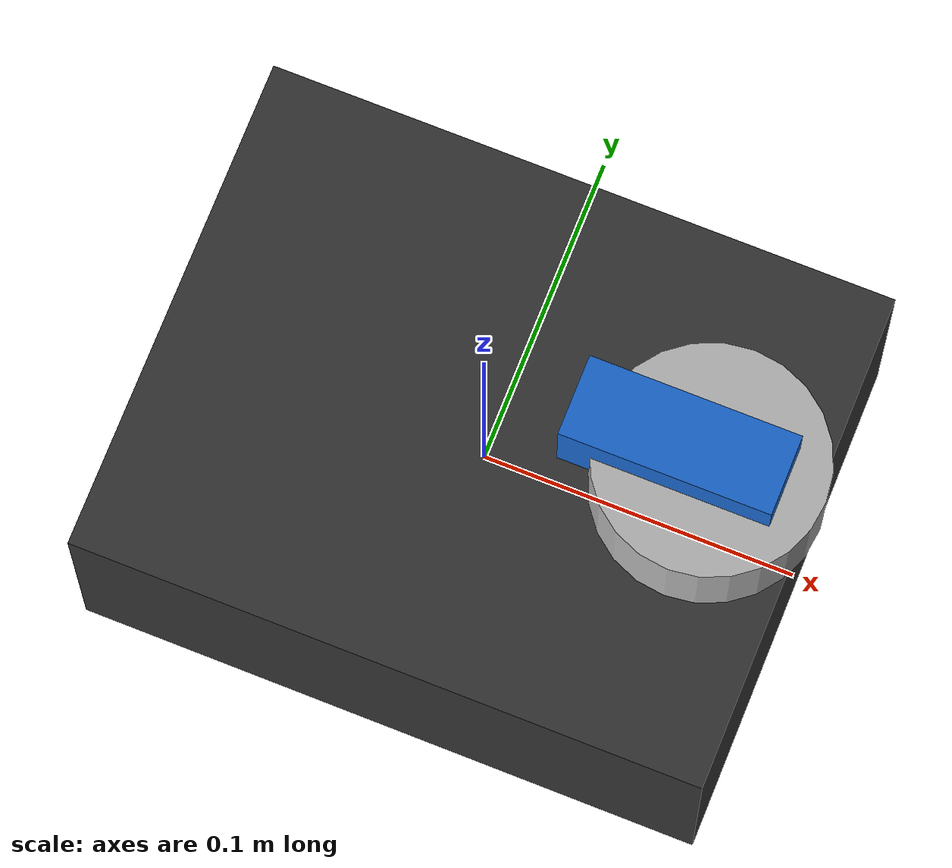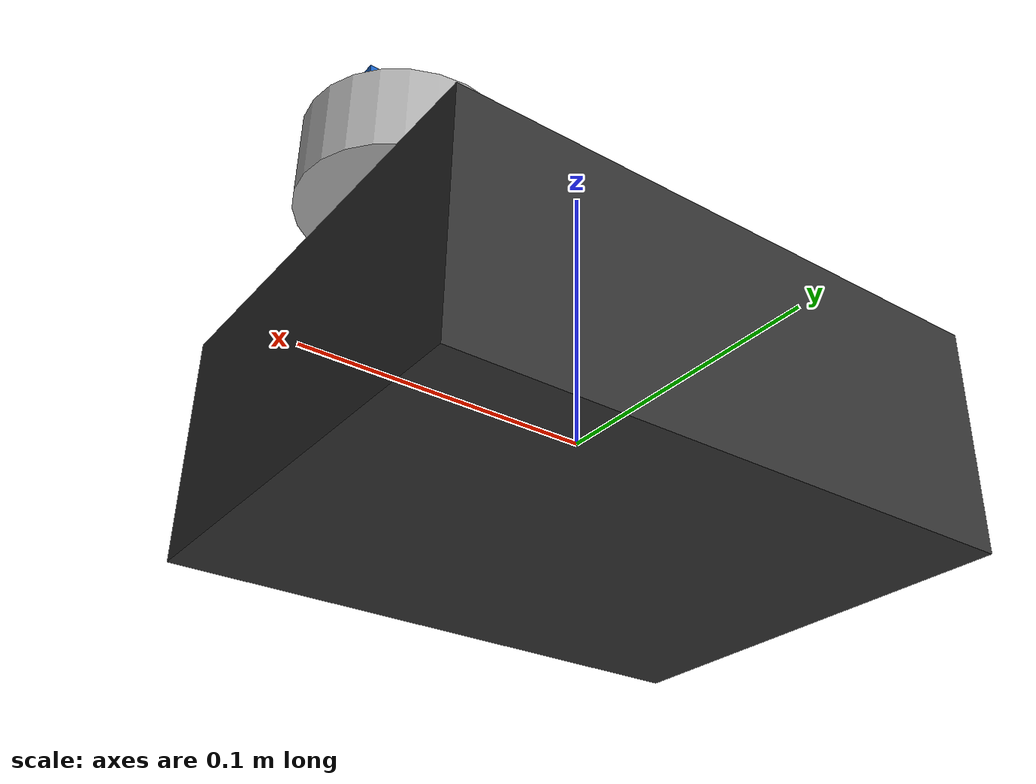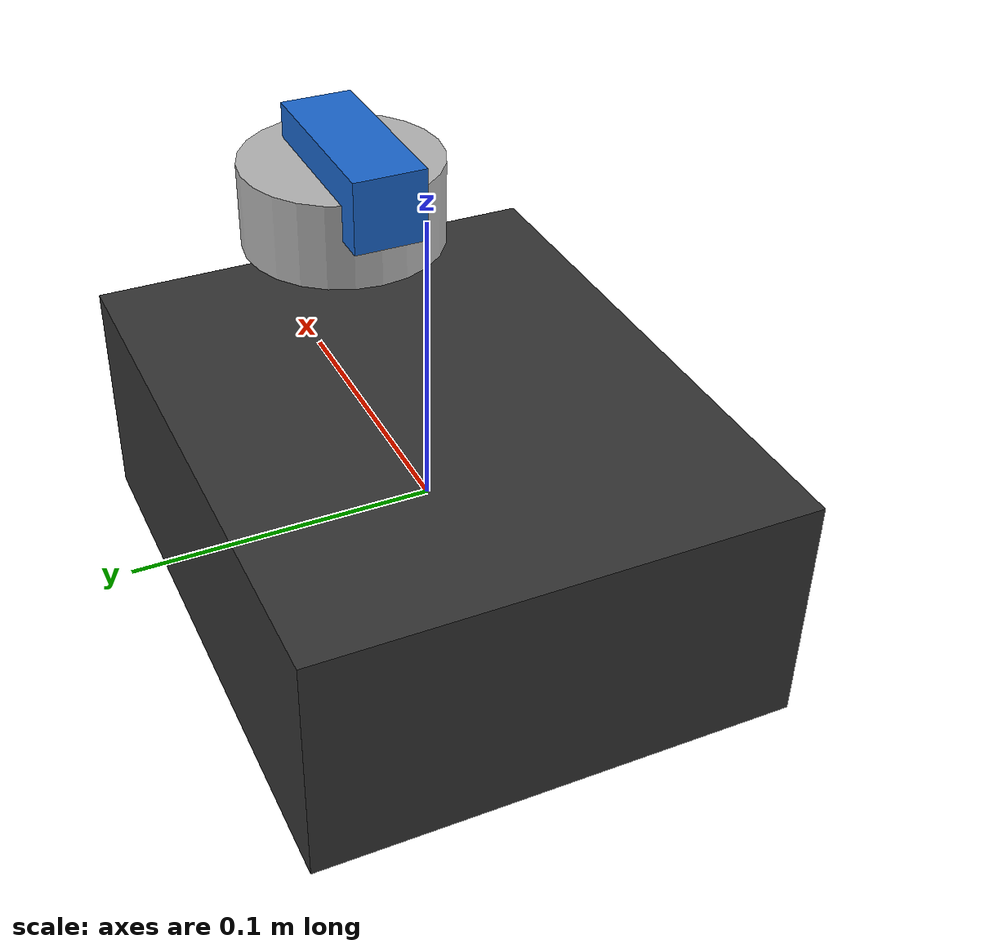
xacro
<?xml version="1.0"?>
<robot name="synapse_base" xmlns:xacro="http://www.ros.org/wiki/xacro">

  <!-- ======================== Properties ======================== -->
  <xacro:property name="pi" value="3.141592653589793"/>

  <!-- Base geometry (meters) and mass (kg) -->
  <xacro:property name="base_length" value="0.20"/>
  <xacro:property name="base_width"  value="0.16"/>
  <xacro:property name="base_height" value="0.08"/>
  <xacro:property name="base_mass"   value="2.0"/>

  <!-- Laser geometry -->
  <xacro:property name="laser_radius" value="0.035"/>
  <xacro:property name="laser_height" value="0.030"/>
  <xacro:property name="laser_mass"   value="0.20"/>

  <!-- Camera enclosure geometry -->
  <xacro:property name="cam_box_x" value="0.065"/>
  <xacro:property name="cam_box_y" value="0.025"/>
  <xacro:property name="cam_box_z" value="0.025"/>
  <xacro:property name="cam_mass"   value="0.12"/>

  <!-- Wheel geometry (cylindrical), axle along +Y, rotation axis (0 1 0) -->
  <xacro:property name="wheel_radius" value="0.033"/>
  <xacro:property name="wheel_thickness" value="0.020"/>
  <xacro:property name="wheel_mass" value="0.15"/>

  <!-- Wheel positions relative to base_link (meters) -->
  <!-- Front wheels slightly forward, rear wheels slightly backward -->
  <xacro:property name="wheel_x_forward" value="${ base_length/2.0 - 0.05 }"/>
  <xacro:property name="wheel_x_backward" value="${ -base_length/2.0 + 0.05 }"/>
  <!-- Lateral offset: near the outer edges, leave margin from chassis -->
  <xacro:property name="wheel_y_offset" value="${ base_width/2.0 - 0.02 }"/>
  <!-- Wheel ground contact (assuming ground z=0 at wheel bottom); mount at base bottom plus radius -->
  <xacro:property name="wheel_z" value="${ -base_height/2.0 + wheel_radius }"/>

  <!-- IMU geometry -->
  <xacro:property name="imu_box" value="0.02"/>
  <xacro:property name="imu_mass" value="0.05"/>

  <!-- Mount offsets relative to base_link (meters) -->
  <!-- Place laser at the front-top of the chassis -->
  <xacro:property name="laser_offset_x" value="${base_length/2.0 - 0.03}"/>
  <xacro:property name="laser_offset_y" value="0.0"/>
  <xacro:property name="laser_offset_z" value="${base_height/2.0 + laser_height/2.0 + 0.02}"/>

  <!-- Place camera just above/beside the laser, slightly back for clearance -->
  <xacro:property name="cam_offset_x" value="${laser_offset_x - 0.01}"/>
  <xacro:property name="cam_offset_y" value="0.0"/>
  <xacro:property name="cam_offset_z" value="${laser_offset_z + 0.015}"/>

  <!-- IMU position (inside chassis, near COM) -->
  <xacro:property name="imu_offset_x" value="0.0"/>
  <xacro:property name="imu_offset_y" value="0.0"/>
  <xacro:property name="imu_offset_z" value="0.0"/>

  <!-- ======================== Materials ========================= -->
  <material name="mat_dark_grey">
    <color rgba="0.2 0.2 0.2 1.0"/>
  </material>
  <material name="mat_light_grey">
    <color rgba="0.7 0.7 0.7 1.0"/>
  </material>
  <material name="mat_blue">
    <color rgba="0.1 0.4 0.8 1.0"/>
  </material>
  <material name="mat_black">
    <color rgba="0.05 0.05 0.05 1.0"/>
  </material>

  <!-- ======================== Base Link ========================= -->
  <link name="base_link">
    <inertial>
      <origin xyz="0 0 0" rpy="0 0 0"/>
      <mass value="${base_mass}"/>
      <!-- Box inertia for dimensions (L=x, W=y, H=z) around center:
           Ixx = 1/12 m (W^2 + H^2), Iyy = 1/12 m (L^2 + H^2), Izz = 1/12 m (L^2 + W^2) -->
      <inertia
        ixx="${(1.0/12.0)*base_mass*(base_width*base_width + base_height*base_height)}"
        ixy="0.0"
        ixz="0.0"
        iyy="${(1.0/12.0)*base_mass*(base_length*base_length + base_height*base_height)}"
        iyz="0.0"
        izz="${(1.0/12.0)*base_mass*(base_length*base_length + base_width*base_width)}"/>
    </inertial>

    <visual>
      <origin xyz="0 0 0" rpy="0 0 0"/>
      <geometry>
        <box size="${base_length} ${base_width} ${base_height}"/>
      </geometry>
      <material name="mat_dark_grey"/>
    </visual>

    <collision>
      <origin xyz="0 0 0" rpy="0 0 0"/>
      <geometry>
        <box size="${base_length} ${base_width} ${base_height}"/>
      </geometry>
    </collision>
  </link>

  <!-- ======================== Laser ============================= -->
  <link name="laser">
    <inertial>
      <origin xyz="0 0 0" rpy="0 0 0"/>
      <mass value="${laser_mass}"/>
      <!-- Approximate inertia for a thin cylinder -->
      <inertia
        ixx="${(1.0/12.0)*laser_mass*(3*laser_radius*laser_radius + laser_height*laser_height)}"
        ixy="0.0"
        ixz="0.0"
        iyy="${(1.0/12.0)*laser_mass*(3*laser_radius*laser_radius + laser_height*laser_height)}"
        iyz="0.0"
        izz="${0.5*laser_mass*laser_radius*laser_radius}"/>
    </inertial>

    <visual>
      <origin xyz="0 0 0" rpy="0 0 0"/>
      <geometry>
        <cylinder radius="${laser_radius}" length="${laser_height}"/>
      </geometry>
      <material name="mat_light_grey"/>
    </visual>

    <collision>
      <origin xyz="0 0 0" rpy="0 0 0"/>
      <geometry>
        <cylinder radius="${laser_radius}" length="${laser_height}"/>
      </geometry>
    </collision>
  </link>

  <joint name="laser_joint" type="fixed">
    <parent link="base_link"/>
    <child link="laser"/>
    <origin xyz="${laser_offset_x} ${laser_offset_y} ${laser_offset_z}" rpy="0 0 0"/>
  </joint>

  <!-- ======================== Camera ============================ -->
  <link name="camera_link">
    <inertial>
      <origin xyz="0 0 0" rpy="0 0 0"/>
      <mass value="${cam_mass}"/>
      <inertia
        ixx="${(1.0/12.0)*cam_mass*(cam_box_y*cam_box_y + cam_box_z*cam_box_z)}"
        ixy="0.0"
        ixz="0.0"
        iyy="${(1.0/12.0)*cam_mass*(cam_box_x*cam_box_x + cam_box_z*cam_box_z)}"
        iyz="0.0"
        izz="${(1.0/12.0)*cam_mass*(cam_box_x*cam_box_x + cam_box_y*cam_box_y)}"/>
    </inertial>

    <visual>
      <origin xyz="0 0 0" rpy="0 0 0"/>
      <geometry>
        <box size="${cam_box_x} ${cam_box_y} ${cam_box_z}"/>
      </geometry>
      <material name="mat_blue"/>
    </visual>

    <collision>
      <origin xyz="0 0 0" rpy="0 0 0"/>
      <geometry>
        <box size="${cam_box_x} ${cam_box_y} ${cam_box_z}"/>
      </geometry>
    </collision>
  </link>

  <joint name="camera_mount" type="fixed">
    <parent link="base_link"/>
    <child link="camera_link"/>
    <origin xyz="${cam_offset_x} ${cam_offset_y} ${cam_offset_z}" rpy="0 0 0"/>
  </joint>

  <link name="camera_color_optical_frame"/>
  <joint name="camera_color_optical_joint" type="fixed">
    <parent link="camera_link"/>
    <child link="camera_color_optical_frame"/>
    <origin xyz="0 0 0" rpy="${-pi/2} 0 ${-pi/2}"/>
  </joint>

  <link name="camera_depth_optical_frame"/>
  <joint name="camera_depth_optical_joint" type="fixed">
    <parent link="camera_link"/>
    <child link="camera_depth_optical_frame"/>
    <origin xyz="0 0 0" rpy="${-pi/2} 0 ${-pi/2}"/>
  </joint>

  <!-- ======================== Wheels ============================ -->
  <!-- Cylinder axis is along +Z by default. Rotate by +90deg about +X so cylinder axis aligns with +Y (wheel axle). -->
  <!-- Front Left -->
  <link name="wheel_front_left">
    <inertial>
      <origin xyz="0 0 0" rpy="0 0 0"/>
      <mass value="${wheel_mass}"/>
      <!-- Solid cylinder inertia about its own center, axis along Z (before rotation):
           Ixx = Iyy = 1/12 m (3r^2 + L^2), Izz = 1/2 m r^2 -->
      <inertia
        ixx="${(1.0/12.0)*wheel_mass*(3*wheel_radius*wheel_radius + wheel_thickness*wheel_thickness)}"
        ixy="0.0"
        ixz="0.0"
        iyy="${(1.0/12.0)*wheel_mass*(3*wheel_radius*wheel_radius + wheel_thickness*wheel_thickness)}"
        iyz="0.0"
        izz="${0.5*wheel_mass*wheel_radius*wheel_radius}"/>
    </inertial>
    <visual>
      <origin xyz="0 0 0" rpy="${pi/2} 0 0"/>
      <geometry>
        <cylinder radius="${wheel_radius}" length="${wheel_thickness}"/>
      </geometry>
      <material name="mat_black"/>
    </visual>
    <collision>
      <origin xyz="0 0 0" rpy="${pi/2} 0 0"/>
      <geometry>
        <cylinder radius="${wheel_radius}" length="${wheel_thickness}"/>
      </geometry>
    </collision>
  </link>
  <joint name="wheel_front_left_joint" type="continuous">
    <parent link="base_link"/>
    <child link="wheel_front_left"/>
    <origin xyz="${wheel_x_forward} ${wheel_y_offset} ${wheel_z}" rpy="0 0 0"/>
    <axis xyz="0 1 0"/>
    <limit effort="10.0" velocity="50.0"/>
  </joint>

  <!-- Front Right -->
  <link name="wheel_front_right">
    <inertial>
      <origin xyz="0 0 0" rpy="0 0 0"/>
      <mass value="${wheel_mass}"/>
      <inertia
        ixx="${(1.0/12.0)*wheel_mass*(3*wheel_radius*wheel_radius + wheel_thickness*wheel_thickness)}"
        ixy="0.0"
        ixz="0.0"
        iyy="${(1.0/12.0)*wheel_mass*(3*wheel_radius*wheel_radius + wheel_thickness*wheel_thickness)}"
        iyz="0.0"
        izz="${0.5*wheel_mass*wheel_radius*wheel_radius}"/>
    </inertial>
    <visual>
      <origin xyz="0 0 0" rpy="${pi/2} 0 0"/>
      <geometry>
        <cylinder radius="${wheel_radius}" length="${wheel_thickness}"/>
      </geometry>
      <material name="mat_black"/>
    </visual>
    <collision>
      <origin xyz="0 0 0" rpy="${pi/2} 0 0"/>
      <geometry>
        <cylinder radius="${wheel_radius}" length="${wheel_thickness}"/>
      </geometry>
    </collision>
  </link>
  <joint name="wheel_front_right_joint" type="continuous">
    <parent link="base_link"/>
    <child link="wheel_front_right"/>
    <origin xyz="${wheel_x_forward} ${-wheel_y_offset} ${wheel_z}" rpy="0 0 0"/>
    <axis xyz="0 1 0"/>
    <limit effort="10.0" velocity="50.0"/>
  </joint>

  <!-- Rear Left -->
  <link name="wheel_rear_left">
    <inertial>
      <origin xyz="0 0 0" rpy="0 0 0"/>
      <mass value="${wheel_mass}"/>
      <inertia
        ixx="${(1.0/12.0)*wheel_mass*(3*wheel_radius*wheel_radius + wheel_thickness*wheel_thickness)}"
        ixy="0.0"
        ixz="0.0"
        iyy="${(1.0/12.0)*wheel_mass*(3*wheel_radius*wheel_radius + wheel_thickness*wheel_thickness)}"
        iyz="0.0"
        izz="${0.5*wheel_mass*wheel_radius*wheel_radius}"/>
    </inertial>
    <visual>
      <origin xyz="0 0 0" rpy="${pi/2} 0 0"/>
      <geometry>
        <cylinder radius="${wheel_radius}" length="${wheel_thickness}"/>
      </geometry>
      <material name="mat_black"/>
    </visual>
    <collision>
      <origin xyz="0 0 0" rpy="${pi/2} 0 0"/>
      <geometry>
        <cylinder radius="${wheel_radius}" length="${wheel_thickness}"/>
      </geometry>
    </collision>
  </link>
  <joint name="wheel_rear_left_joint" type="continuous">
    <parent link="base_link"/>
    <child link="wheel_rear_left"/>
    <origin xyz="${wheel_x_backward} ${wheel_y_offset} ${wheel_z}" rpy="0 0 0"/>
    <axis xyz="0 1 0"/>
    <limit effort="10.0" velocity="50.0"/>
  </joint>

  <!-- Rear Right -->
  <link name="wheel_rear_right">
    <inertial>
      <origin xyz="0 0 0" rpy="0 0 0"/>
      <mass value="${wheel_mass}"/>
      <inertia
        ixx="${(1.0/12.0)*wheel_mass*(3*wheel_radius*wheel_radius + wheel_thickness*wheel_thickness)}"
        ixy="0.0"
        ixz="0.0"
        iyy="${(1.0/12.0)*wheel_mass*(3*wheel_radius*wheel_radius + wheel_thickness*wheel_thickness)}"
        iyz="0.0"
        izz="${0.5*wheel_mass*wheel_radius*wheel_radius}"/>
    </inertial>
    <visual>
      <origin xyz="0 0 0" rpy="${pi/2} 0 0"/>
      <geometry>
        <cylinder radius="${wheel_radius}" length="${wheel_thickness}"/>
      </geometry>
      <material name="mat_black"/>
    </visual>
    <collision>
      <origin xyz="0 0 0" rpy="${pi/2} 0 0"/>
      <geometry>
        <cylinder radius="${wheel_radius}" length="${wheel_thickness}"/>
      </geometry>
    </collision>
  </link>
  <joint name="wheel_rear_right_joint" type="continuous">
    <parent link="base_link"/>
    <child link="wheel_rear_right"/>
    <origin xyz="${wheel_x_backward} ${-wheel_y_offset} ${wheel_z}" rpy="0 0 0"/>
    <axis xyz="0 1 0"/>
    <limit effort="10.0" velocity="50.0"/>
  </joint>

  <!-- ======================== IMU =============================== -->
  <link name="imu_link">
    <inertial>
      <origin xyz="0 0 0" rpy="0 0 0"/>
      <mass value="${imu_mass}"/>
      <!-- Box inertia: Ixx = 1/12 m (y^2+z^2), Iyy = 1/12 m (x^2+z^2), Izz = 1/12 m (x^2+y^2) -->
      <inertia
        ixx="${(1.0/12.0)*imu_mass*(imu_box*imu_box + imu_box*imu_box)}"
        ixy="0.0"
        ixz="0.0"
        iyy="${(1.0/12.0)*imu_mass*(imu_box*imu_box + imu_box*imu_box)}"
        iyz="0.0"
        izz="${(1.0/12.0)*imu_mass*(imu_box*imu_box + imu_box*imu_box)}"/>
    </inertial>
    <visual>
      <origin xyz="0 0 0" rpy="0 0 0"/>
      <geometry>
        <box size="${imu_box} ${imu_box} ${imu_box}"/>
      </geometry>
      <material name="mat_light_grey"/>
    </visual>
    <collision>
      <origin xyz="0 0 0" rpy="0 0 0"/>
      <geometry>
        <box size="${imu_box} ${imu_box} ${imu_box}"/>
      </geometry>
    </collision>
  </link>
  <joint name="imu_mount" type="fixed">
    <parent link="base_link"/>
    <child link="imu_link"/>
    <origin xyz="${imu_offset_x} ${imu_offset_y} ${imu_offset_z}" rpy="0 0 0"/>
  </joint>

  <!-- ======================== End of Model ====================== -->

</robot>
